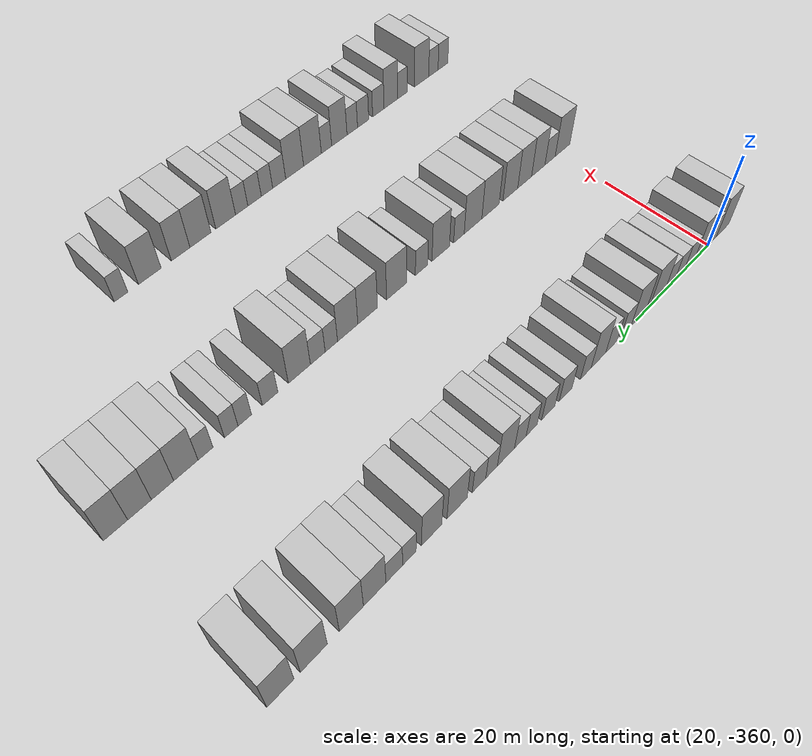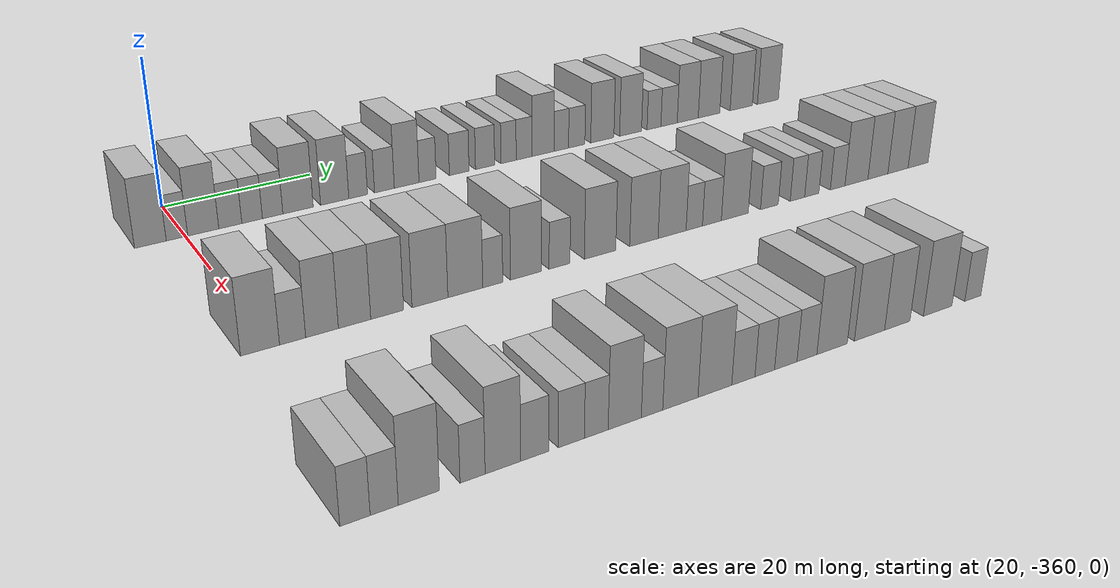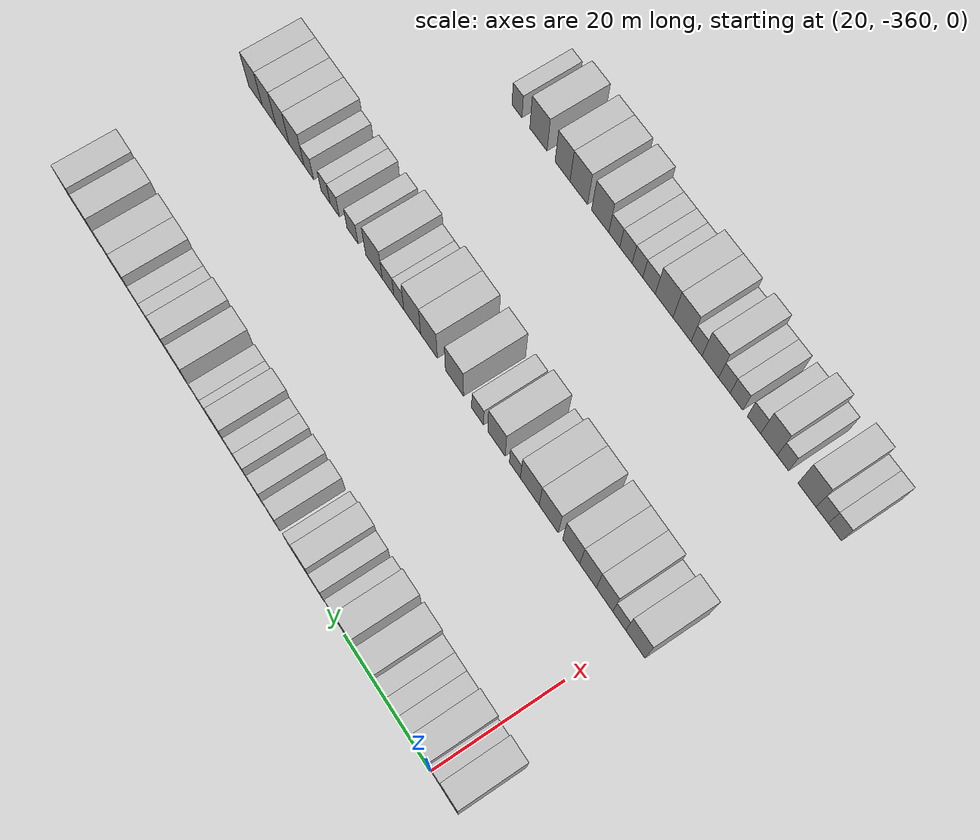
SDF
<sdf version="1.6">
 <world name="default">
  <model name="building_25">
   <static>1</static>
   <pose>25.0000 -364.2365 0 0.000000 0.000000 0.000000</pose>
   <link name="link">
    <pose>0 0 4.50 0 0 0</pose>
    <collision name="collision"><geometry><box><size>10.0000 3.8043 9.0000</size></box></geometry></collision>
    <visual name="visual">
     <cast_shadows>0</cast_shadows>
     <geometry><box><size>10.0000 3.8043 9.0000</size></box></geometry>
     <material>
      <script>
       <uri>model://HANNAS_wall/materials/scripts</uri>
       <uri>model://HANNAS_wall/materials/textures</uri>
       <name>vrc/HANNAS_wall</name>
      </script>
     </material>
    </visual>
   </link>
  </model>
  <model name="building_26">
   <static>1</static>
   <pose>25.0000 -361.0230 0 0.000000 0.000000 0.000000</pose>
   <link name="link">
    <pose>0 0 3.00 0 0 0</pose>
    <collision name="collision"><geometry><box><size>10.0000 2.6225 6.0000</size></box></geometry></collision>
    <visual name="visual">
     <cast_shadows>0</cast_shadows>
     <geometry><box><size>10.0000 2.6225 6.0000</size></box></geometry>
     <material>
      <script>
       <uri>model://HANNAS_wall/materials/scripts</uri>
       <uri>model://HANNAS_wall/materials/textures</uri>
       <name>vrc/HANNAS_wall</name>
      </script>
     </material>
    </visual>
   </link>
  </model>
  <model name="building_27">
   <static>1</static>
   <pose>25.0000 -357.7749 0 0.000000 0.000000 0.000000</pose>
   <link name="link">
    <pose>0 0 4.50 0 0 0</pose>
    <collision name="collision"><geometry><box><size>10.0000 3.8737 9.0000</size></box></geometry></collision>
    <visual name="visual">
     <cast_shadows>0</cast_shadows>
     <geometry><box><size>10.0000 3.8737 9.0000</size></box></geometry>
     <material>
      <script>
       <uri>model://HANNAS_wall/materials/scripts</uri>
       <uri>model://HANNAS_wall/materials/textures</uri>
       <name>vrc/HANNAS_wall</name>
      </script>
     </material>
    </visual>
   </link>
  </model>
  <model name="building_28">
   <static>1</static>
   <pose>25.0000 -354.3741 0 0.000000 0.000000 0.000000</pose>
   <link name="link">
    <pose>0 0 3.00 0 0 0</pose>
    <collision name="collision"><geometry><box><size>10.0000 2.9279 6.0000</size></box></geometry></collision>
    <visual name="visual">
     <cast_shadows>0</cast_shadows>
     <geometry><box><size>10.0000 2.9279 6.0000</size></box></geometry>
     <material>
      <script>
       <uri>model://HANNAS_wall/materials/scripts</uri>
       <uri>model://HANNAS_wall/materials/textures</uri>
       <name>vrc/HANNAS_wall</name>
      </script>
     </material>
    </visual>
   </link>
  </model>
  <model name="building_29">
   <static>1</static>
   <pose>25.0000 -351.5762 0 0.000000 0.000000 0.000000</pose>
   <link name="link">
    <pose>0 0 3.00 0 0 0</pose>
    <collision name="collision"><geometry><box><size>10.0000 2.6679 6.0000</size></box></geometry></collision>
    <visual name="visual">
     <cast_shadows>0</cast_shadows>
     <geometry><box><size>10.0000 2.6679 6.0000</size></box></geometry>
     <material>
      <script>
       <uri>model://HANNAS_wall/materials/scripts</uri>
       <uri>model://HANNAS_wall/materials/textures</uri>
       <name>vrc/HANNAS_wall</name>
      </script>
     </material>
    </visual>
   </link>
  </model>
  <model name="building_30">
   <static>1</static>
   <pose>25.0000 -348.9014 0 0.000000 0.000000 0.000000</pose>
   <link name="link">
    <pose>0 0 3.00 0 0 0</pose>
    <collision name="collision"><geometry><box><size>10.0000 2.6817 6.0000</size></box></geometry></collision>
    <visual name="visual">
     <cast_shadows>0</cast_shadows>
     <geometry><box><size>10.0000 2.6817 6.0000</size></box></geometry>
     <material>
      <script>
       <uri>model://HANNAS_wall/materials/scripts</uri>
       <uri>model://HANNAS_wall/materials/textures</uri>
       <name>vrc/HANNAS_wall</name>
      </script>
     </material>
    </visual>
   </link>
  </model>
  <model name="building_31">
   <static>1</static>
   <pose>25.0000 -345.5263 0 0.000000 0.000000 0.000000</pose>
   <link name="link">
    <pose>0 0 4.50 0 0 0</pose>
    <collision name="collision"><geometry><box><size>10.0000 4.0684 9.0000</size></box></geometry></collision>
    <visual name="visual">
     <cast_shadows>0</cast_shadows>
     <geometry><box><size>10.0000 4.0684 9.0000</size></box></geometry>
     <material>
      <script>
       <uri>model://HANNAS_wall/materials/scripts</uri>
       <uri>model://HANNAS_wall/materials/textures</uri>
       <name>vrc/HANNAS_wall</name>
      </script>
     </material>
    </visual>
   </link>
  </model>
  <model name="building_32">
   <static>1</static>
   <pose>25.0000 -340.5434 0 0.000000 0.000000 0.000000</pose>
   <link name="link">
    <pose>0 0 4.50 0 0 0</pose>
    <collision name="collision"><geometry><box><size>10.0000 3.8974 9.0000</size></box></geometry></collision>
    <visual name="visual">
     <cast_shadows>0</cast_shadows>
     <geometry><box><size>10.0000 3.8974 9.0000</size></box></geometry>
     <material>
      <script>
       <uri>model://HANNAS_wall/materials/scripts</uri>
       <uri>model://HANNAS_wall/materials/textures</uri>
       <name>vrc/HANNAS_wall</name>
      </script>
     </material>
    </visual>
   </link>
  </model>
  <model name="building_33">
   <static>1</static>
   <pose>25.0000 -337.2817 0 0.000000 0.000000 0.000000</pose>
   <link name="link">
    <pose>0 0 3.00 0 0 0</pose>
    <collision name="collision"><geometry><box><size>10.0000 2.6259 6.0000</size></box></geometry></collision>
    <visual name="visual">
     <cast_shadows>0</cast_shadows>
     <geometry><box><size>10.0000 2.6259 6.0000</size></box></geometry>
     <material>
      <script>
       <uri>model://HANNAS_wall/materials/scripts</uri>
       <uri>model://HANNAS_wall/materials/textures</uri>
       <name>vrc/HANNAS_wall</name>
      </script>
     </material>
    </visual>
   </link>
  </model>
  <model name="building_34">
   <static>1</static>
   <pose>25.0000 -333.5525 0 0.000000 0.000000 0.000000</pose>
   <link name="link">
    <pose>0 0 3.00 0 0 0</pose>
    <collision name="collision"><geometry><box><size>10.0000 2.8326 6.0000</size></box></geometry></collision>
    <visual name="visual">
     <cast_shadows>0</cast_shadows>
     <geometry><box><size>10.0000 2.8326 6.0000</size></box></geometry>
     <material>
      <script>
       <uri>model://HANNAS_wall/materials/scripts</uri>
       <uri>model://HANNAS_wall/materials/textures</uri>
       <name>vrc/HANNAS_wall</name>
      </script>
     </material>
    </visual>
   </link>
  </model>
  <model name="building_35">
   <static>1</static>
   <pose>25.0000 -330.3303 0 0.000000 0.000000 0.000000</pose>
   <link name="link">
    <pose>0 0 4.50 0 0 0</pose>
    <collision name="collision"><geometry><box><size>10.0000 3.6116 9.0000</size></box></geometry></collision>
    <visual name="visual">
     <cast_shadows>0</cast_shadows>
     <geometry><box><size>10.0000 3.6116 9.0000</size></box></geometry>
     <material>
      <script>
       <uri>model://HANNAS_wall/materials/scripts</uri>
       <uri>model://HANNAS_wall/materials/textures</uri>
       <name>vrc/HANNAS_wall</name>
      </script>
     </material>
    </visual>
   </link>
  </model>
  <model name="building_36">
   <static>1</static>
   <pose>25.0000 -327.2523 0 0.000000 0.000000 0.000000</pose>
   <link name="link">
    <pose>0 0 3.00 0 0 0</pose>
    <collision name="collision"><geometry><box><size>10.0000 2.5445 6.0000</size></box></geometry></collision>
    <visual name="visual">
     <cast_shadows>0</cast_shadows>
     <geometry><box><size>10.0000 2.5445 6.0000</size></box></geometry>
     <material>
      <script>
       <uri>model://HANNAS_wall/materials/scripts</uri>
       <uri>model://HANNAS_wall/materials/textures</uri>
       <name>vrc/HANNAS_wall</name>
      </script>
     </material>
    </visual>
   </link>
  </model>
  <model name="building_37">
   <static>1</static>
   <pose>25.0000 -322.4861 0 0.000000 0.000000 0.000000</pose>
   <link name="link">
    <pose>0 0 3.00 0 0 0</pose>
    <collision name="collision"><geometry><box><size>10.0000 2.9878 6.0000</size></box></geometry></collision>
    <visual name="visual">
     <cast_shadows>0</cast_shadows>
     <geometry><box><size>10.0000 2.9878 6.0000</size></box></geometry>
     <material>
      <script>
       <uri>model://HANNAS_wall/materials/scripts</uri>
       <uri>model://HANNAS_wall/materials/textures</uri>
       <name>vrc/HANNAS_wall</name>
      </script>
     </material>
    </visual>
   </link>
  </model>
  <model name="building_38">
   <static>1</static>
   <pose>25.0000 -318.5004 0 0.000000 0.000000 0.000000</pose>
   <link name="link">
    <pose>0 0 3.00 0 0 0</pose>
    <collision name="collision"><geometry><box><size>10.0000 2.9836 6.0000</size></box></geometry></collision>
    <visual name="visual">
     <cast_shadows>0</cast_shadows>
     <geometry><box><size>10.0000 2.9836 6.0000</size></box></geometry>
     <material>
      <script>
       <uri>model://HANNAS_wall/materials/scripts</uri>
       <uri>model://HANNAS_wall/materials/textures</uri>
       <name>vrc/HANNAS_wall</name>
      </script>
     </material>
    </visual>
   </link>
  </model>
  <model name="building_39">
   <static>1</static>
   <pose>25.0000 -314.8002 0 0.000000 0.000000 0.000000</pose>
   <link name="link">
    <pose>0 0 3.00 0 0 0</pose>
    <collision name="collision"><geometry><box><size>10.0000 2.4167 6.0000</size></box></geometry></collision>
    <visual name="visual">
     <cast_shadows>0</cast_shadows>
     <geometry><box><size>10.0000 2.4167 6.0000</size></box></geometry>
     <material>
      <script>
       <uri>model://HANNAS_wall/materials/scripts</uri>
       <uri>model://HANNAS_wall/materials/textures</uri>
       <name>vrc/HANNAS_wall</name>
      </script>
     </material>
    </visual>
   </link>
  </model>
  <model name="building_40">
   <static>1</static>
   <pose>25.0000 -312.3255 0 0.000000 0.000000 0.000000</pose>
   <link name="link">
    <pose>0 0 3.00 0 0 0</pose>
    <collision name="collision"><geometry><box><size>10.0000 2.5326 6.0000</size></box></geometry></collision>
    <visual name="visual">
     <cast_shadows>0</cast_shadows>
     <geometry><box><size>10.0000 2.5326 6.0000</size></box></geometry>
     <material>
      <script>
       <uri>model://HANNAS_wall/materials/scripts</uri>
       <uri>model://HANNAS_wall/materials/textures</uri>
       <name>vrc/HANNAS_wall</name>
      </script>
     </material>
    </visual>
   </link>
  </model>
  <model name="building_41">
   <static>1</static>
   <pose>25.0000 -309.2463 0 0.000000 0.000000 0.000000</pose>
   <link name="link">
    <pose>0 0 4.50 0 0 0</pose>
    <collision name="collision"><geometry><box><size>10.0000 3.6259 9.0000</size></box></geometry></collision>
    <visual name="visual">
     <cast_shadows>0</cast_shadows>
     <geometry><box><size>10.0000 3.6259 9.0000</size></box></geometry>
     <material>
      <script>
       <uri>model://HANNAS_wall/materials/scripts</uri>
       <uri>model://HANNAS_wall/materials/textures</uri>
       <name>vrc/HANNAS_wall</name>
      </script>
     </material>
    </visual>
   </link>
  </model>
  <model name="building_42">
   <static>1</static>
   <pose>25.0000 -306.2220 0 0.000000 0.000000 0.000000</pose>
   <link name="link">
    <pose>0 0 3.00 0 0 0</pose>
    <collision name="collision"><geometry><box><size>10.0000 2.4227 6.0000</size></box></geometry></collision>
    <visual name="visual">
     <cast_shadows>0</cast_shadows>
     <geometry><box><size>10.0000 2.4227 6.0000</size></box></geometry>
     <material>
      <script>
       <uri>model://HANNAS_wall/materials/scripts</uri>
       <uri>model://HANNAS_wall/materials/textures</uri>
       <name>vrc/HANNAS_wall</name>
      </script>
     </material>
    </visual>
   </link>
  </model>
  <model name="building_43">
   <static>1</static>
   <pose>25.0000 -303.6362 0 0.000000 0.000000 0.000000</pose>
   <link name="link">
    <pose>0 0 3.00 0 0 0</pose>
    <collision name="collision"><geometry><box><size>10.0000 2.7490 6.0000</size></box></geometry></collision>
    <visual name="visual">
     <cast_shadows>0</cast_shadows>
     <geometry><box><size>10.0000 2.7490 6.0000</size></box></geometry>
     <material>
      <script>
       <uri>model://HANNAS_wall/materials/scripts</uri>
       <uri>model://HANNAS_wall/materials/textures</uri>
       <name>vrc/HANNAS_wall</name>
      </script>
     </material>
    </visual>
   </link>
  </model>
  <model name="building_44">
   <static>1</static>
   <pose>25.0000 -299.2667 0 0.000000 0.000000 0.000000</pose>
   <link name="link">
    <pose>0 0 4.50 0 0 0</pose>
    <collision name="collision"><geometry><box><size>10.0000 3.9901 9.0000</size></box></geometry></collision>
    <visual name="visual">
     <cast_shadows>0</cast_shadows>
     <geometry><box><size>10.0000 3.9901 9.0000</size></box></geometry>
     <material>
      <script>
       <uri>model://HANNAS_wall/materials/scripts</uri>
       <uri>model://HANNAS_wall/materials/textures</uri>
       <name>vrc/HANNAS_wall</name>
      </script>
     </material>
    </visual>
   </link>
  </model>
  <model name="building_45">
   <static>1</static>
   <pose>25.0000 -294.3375 0 0.000000 0.000000 0.000000</pose>
   <link name="link">
    <pose>0 0 4.50 0 0 0</pose>
    <collision name="collision"><geometry><box><size>10.0000 3.8683 9.0000</size></box></geometry></collision>
    <visual name="visual">
     <cast_shadows>0</cast_shadows>
     <geometry><box><size>10.0000 3.8683 9.0000</size></box></geometry>
     <material>
      <script>
       <uri>model://HANNAS_wall/materials/scripts</uri>
       <uri>model://HANNAS_wall/materials/textures</uri>
       <name>vrc/HANNAS_wall</name>
      </script>
     </material>
    </visual>
   </link>
  </model>
  <model name="building_46">
   <static>1</static>
   <pose>25.0000 -290.1583 0 0.000000 0.000000 0.000000</pose>
   <link name="link">
    <pose>0 0 3.00 0 0 0</pose>
    <collision name="collision"><geometry><box><size>10.0000 2.4899 6.0000</size></box></geometry></collision>
    <visual name="visual">
     <cast_shadows>0</cast_shadows>
     <geometry><box><size>10.0000 2.4899 6.0000</size></box></geometry>
     <material>
      <script>
       <uri>model://HANNAS_wall/materials/scripts</uri>
       <uri>model://HANNAS_wall/materials/textures</uri>
       <name>vrc/HANNAS_wall</name>
      </script>
     </material>
    </visual>
   </link>
  </model>
  <model name="building_47">
   <static>1</static>
   <pose>25.0000 -287.4162 0 0.000000 0.000000 0.000000</pose>
   <link name="link">
    <pose>0 0 3.00 0 0 0</pose>
    <collision name="collision"><geometry><box><size>10.0000 2.9943 6.0000</size></box></geometry></collision>
    <visual name="visual">
     <cast_shadows>0</cast_shadows>
     <geometry><box><size>10.0000 2.9943 6.0000</size></box></geometry>
     <material>
      <script>
       <uri>model://HANNAS_wall/materials/scripts</uri>
       <uri>model://HANNAS_wall/materials/textures</uri>
       <name>vrc/HANNAS_wall</name>
      </script>
     </material>
    </visual>
   </link>
  </model>
  <model name="building_48">
   <static>1</static>
   <pose>25.0000 -283.9546 0 0.000000 0.000000 0.000000</pose>
   <link name="link">
    <pose>0 0 4.50 0 0 0</pose>
    <collision name="collision"><geometry><box><size>10.0000 3.9290 9.0000</size></box></geometry></collision>
    <visual name="visual">
     <cast_shadows>0</cast_shadows>
     <geometry><box><size>10.0000 3.9290 9.0000</size></box></geometry>
     <material>
      <script>
       <uri>model://HANNAS_wall/materials/scripts</uri>
       <uri>model://HANNAS_wall/materials/textures</uri>
       <name>vrc/HANNAS_wall</name>
      </script>
     </material>
    </visual>
   </link>
  </model>
  <model name="building_49">
   <static>1</static>
   <pose>25.0000 -279.9491 0 0.000000 0.000000 0.000000</pose>
   <link name="link">
    <pose>0 0 4.50 0 0 0</pose>
    <collision name="collision"><geometry><box><size>10.0000 4.0820 9.0000</size></box></geometry></collision>
    <visual name="visual">
     <cast_shadows>0</cast_shadows>
     <geometry><box><size>10.0000 4.0820 9.0000</size></box></geometry>
     <material>
      <script>
       <uri>model://HANNAS_wall/materials/scripts</uri>
       <uri>model://HANNAS_wall/materials/textures</uri>
       <name>vrc/HANNAS_wall</name>
      </script>
     </material>
    </visual>
   </link>
  </model>
  <model name="building_50">
   <static>1</static>
   <pose>25.0000 -273.7268 0 0.000000 0.000000 0.000000</pose>
   <link name="link">
    <pose>0 0 4.50 0 0 0</pose>
    <collision name="collision"><geometry><box><size>10.0000 4.3626 9.0000</size></box></geometry></collision>
    <visual name="visual">
     <cast_shadows>0</cast_shadows>
     <geometry><box><size>10.0000 4.3626 9.0000</size></box></geometry>
     <material>
      <script>
       <uri>model://HANNAS_wall/materials/scripts</uri>
       <uri>model://HANNAS_wall/materials/textures</uri>
       <name>vrc/HANNAS_wall</name>
      </script>
     </material>
    </visual>
   </link>
  </model>
  <model name="building_51">
   <static>1</static>
   <pose>25.0000 -268.4411 0 0.000000 0.000000 0.000000</pose>
   <link name="link">
    <pose>0 0 4.50 0 0 0</pose>
    <collision name="collision"><geometry><box><size>10.0000 4.2088 9.0000</size></box></geometry></collision>
    <visual name="visual">
     <cast_shadows>0</cast_shadows>
     <geometry><box><size>10.0000 4.2088 9.0000</size></box></geometry>
     <material>
      <script>
       <uri>model://HANNAS_wall/materials/scripts</uri>
       <uri>model://HANNAS_wall/materials/textures</uri>
       <name>vrc/HANNAS_wall</name>
      </script>
     </material>
    </visual>
   </link>
  </model>
  <model name="building_251">
   <static>1</static>
   <pose>55.0000 -361.2225 0 0.000000 0.000000 0.000000</pose>
   <link name="link">
    <pose>0 0 4.50 0 0 0</pose>
    <collision name="collision"><geometry><box><size>10.0000 4.1702 9.0000</size></box></geometry></collision>
    <visual name="visual">
     <cast_shadows>0</cast_shadows>
     <geometry><box><size>10.0000 4.1702 9.0000</size></box></geometry>
     <material>
      <script>
       <uri>model://HANNAS_wall/materials/scripts</uri>
       <uri>model://HANNAS_wall/materials/textures</uri>
       <name>vrc/HANNAS_wall</name>
      </script>
     </material>
    </visual>
   </link>
  </model>
  <model name="building_252">
   <static>1</static>
   <pose>55.0000 -357.7024 0 0.000000 0.000000 0.000000</pose>
   <link name="link">
    <pose>0 0 3.00 0 0 0</pose>
    <collision name="collision"><geometry><box><size>10.0000 2.8701 6.0000</size></box></geometry></collision>
    <visual name="visual">
     <cast_shadows>0</cast_shadows>
     <geometry><box><size>10.0000 2.8701 6.0000</size></box></geometry>
     <material>
      <script>
       <uri>model://HANNAS_wall/materials/scripts</uri>
       <uri>model://HANNAS_wall/materials/textures</uri>
       <name>vrc/HANNAS_wall</name>
      </script>
     </material>
    </visual>
   </link>
  </model>
  <model name="building_253">
   <static>1</static>
   <pose>55.0000 -354.4376 0 0.000000 0.000000 0.000000</pose>
   <link name="link">
    <pose>0 0 4.50 0 0 0</pose>
    <collision name="collision"><geometry><box><size>10.0000 3.6593 9.0000</size></box></geometry></collision>
    <visual name="visual">
     <cast_shadows>0</cast_shadows>
     <geometry><box><size>10.0000 3.6593 9.0000</size></box></geometry>
     <material>
      <script>
       <uri>model://HANNAS_wall/materials/scripts</uri>
       <uri>model://HANNAS_wall/materials/textures</uri>
       <name>vrc/HANNAS_wall</name>
      </script>
     </material>
    </visual>
   </link>
  </model>
  <model name="building_254">
   <static>1</static>
   <pose>55.0000 -350.7460 0 0.000000 0.000000 0.000000</pose>
   <link name="link">
    <pose>0 0 4.50 0 0 0</pose>
    <collision name="collision"><geometry><box><size>10.0000 3.7240 9.0000</size></box></geometry></collision>
    <visual name="visual">
     <cast_shadows>0</cast_shadows>
     <geometry><box><size>10.0000 3.7240 9.0000</size></box></geometry>
     <material>
      <script>
       <uri>model://HANNAS_wall/materials/scripts</uri>
       <uri>model://HANNAS_wall/materials/textures</uri>
       <name>vrc/HANNAS_wall</name>
      </script>
     </material>
    </visual>
   </link>
  </model>
  <model name="building_255">
   <static>1</static>
   <pose>55.0000 -346.9394 0 0.000000 0.000000 0.000000</pose>
   <link name="link">
    <pose>0 0 4.50 0 0 0</pose>
    <collision name="collision"><geometry><box><size>10.0000 3.8892 9.0000</size></box></geometry></collision>
    <visual name="visual">
     <cast_shadows>0</cast_shadows>
     <geometry><box><size>10.0000 3.8892 9.0000</size></box></geometry>
     <material>
      <script>
       <uri>model://HANNAS_wall/materials/scripts</uri>
       <uri>model://HANNAS_wall/materials/textures</uri>
       <name>vrc/HANNAS_wall</name>
      </script>
     </material>
    </visual>
   </link>
  </model>
  <model name="building_256">
   <static>1</static>
   <pose>55.0000 -341.8030 0 0.000000 0.000000 0.000000</pose>
   <link name="link">
    <pose>0 0 4.50 0 0 0</pose>
    <collision name="collision"><geometry><box><size>10.0000 4.3836 9.0000</size></box></geometry></collision>
    <visual name="visual">
     <cast_shadows>0</cast_shadows>
     <geometry><box><size>10.0000 4.3836 9.0000</size></box></geometry>
     <material>
      <script>
       <uri>model://HANNAS_wall/materials/scripts</uri>
       <uri>model://HANNAS_wall/materials/textures</uri>
       <name>vrc/HANNAS_wall</name>
      </script>
     </material>
    </visual>
   </link>
  </model>
  <model name="building_257">
   <static>1</static>
   <pose>55.0000 -337.4171 0 0.000000 0.000000 0.000000</pose>
   <link name="link">
    <pose>0 0 4.50 0 0 0</pose>
    <collision name="collision"><geometry><box><size>10.0000 4.3882 9.0000</size></box></geometry></collision>
    <visual name="visual">
     <cast_shadows>0</cast_shadows>
     <geometry><box><size>10.0000 4.3882 9.0000</size></box></geometry>
     <material>
      <script>
       <uri>model://HANNAS_wall/materials/scripts</uri>
       <uri>model://HANNAS_wall/materials/textures</uri>
       <name>vrc/HANNAS_wall</name>
      </script>
     </material>
    </visual>
   </link>
  </model>
  <model name="building_258">
   <static>1</static>
   <pose>55.0000 -333.9358 0 0.000000 0.000000 0.000000</pose>
   <link name="link">
    <pose>0 0 3.00 0 0 0</pose>
    <collision name="collision"><geometry><box><size>10.0000 2.5744 6.0000</size></box></geometry></collision>
    <visual name="visual">
     <cast_shadows>0</cast_shadows>
     <geometry><box><size>10.0000 2.5744 6.0000</size></box></geometry>
     <material>
      <script>
       <uri>model://HANNAS_wall/materials/scripts</uri>
       <uri>model://HANNAS_wall/materials/textures</uri>
       <name>vrc/HANNAS_wall</name>
      </script>
     </material>
    </visual>
   </link>
  </model>
  <model name="building_259">
   <static>1</static>
   <pose>55.0000 -329.5795 0 0.000000 0.000000 0.000000</pose>
   <link name="link">
    <pose>0 0 4.50 0 0 0</pose>
    <collision name="collision"><geometry><box><size>10.0000 4.1382 9.0000</size></box></geometry></collision>
    <visual name="visual">
     <cast_shadows>0</cast_shadows>
     <geometry><box><size>10.0000 4.1382 9.0000</size></box></geometry>
     <material>
      <script>
       <uri>model://HANNAS_wall/materials/scripts</uri>
       <uri>model://HANNAS_wall/materials/textures</uri>
       <name>vrc/HANNAS_wall</name>
      </script>
     </material>
    </visual>
   </link>
  </model>
  <model name="building_260">
   <static>1</static>
   <pose>55.0000 -325.0869 0 0.000000 0.000000 0.000000</pose>
   <link name="link">
    <pose>0 0 3.00 0 0 0</pose>
    <collision name="collision"><geometry><box><size>10.0000 2.8469 6.0000</size></box></geometry></collision>
    <visual name="visual">
     <cast_shadows>0</cast_shadows>
     <geometry><box><size>10.0000 2.8469 6.0000</size></box></geometry>
     <material>
      <script>
       <uri>model://HANNAS_wall/materials/scripts</uri>
       <uri>model://HANNAS_wall/materials/textures</uri>
       <name>vrc/HANNAS_wall</name>
      </script>
     </material>
    </visual>
   </link>
  </model>
  <model name="building_261">
   <static>1</static>
   <pose>55.0000 -319.4490 0 0.000000 0.000000 0.000000</pose>
   <link name="link">
    <pose>0 0 4.50 0 0 0</pose>
    <collision name="collision"><geometry><box><size>10.0000 4.4290 9.0000</size></box></geometry></collision>
    <visual name="visual">
     <cast_shadows>0</cast_shadows>
     <geometry><box><size>10.0000 4.4290 9.0000</size></box></geometry>
     <material>
      <script>
       <uri>model://HANNAS_wall/materials/scripts</uri>
       <uri>model://HANNAS_wall/materials/textures</uri>
       <name>vrc/HANNAS_wall</name>
      </script>
     </material>
    </visual>
   </link>
  </model>
  <model name="building_262">
   <static>1</static>
   <pose>55.0000 -313.1427 0 0.000000 0.000000 0.000000</pose>
   <link name="link">
    <pose>0 0 4.50 0 0 0</pose>
    <collision name="collision"><geometry><box><size>10.0000 4.1835 9.0000</size></box></geometry></collision>
    <visual name="visual">
     <cast_shadows>0</cast_shadows>
     <geometry><box><size>10.0000 4.1835 9.0000</size></box></geometry>
     <material>
      <script>
       <uri>model://HANNAS_wall/materials/scripts</uri>
       <uri>model://HANNAS_wall/materials/textures</uri>
       <name>vrc/HANNAS_wall</name>
      </script>
     </material>
    </visual>
   </link>
  </model>
  <model name="building_263">
   <static>1</static>
   <pose>55.0000 -308.9392 0 0.000000 0.000000 0.000000</pose>
   <link name="link">
    <pose>0 0 4.50 0 0 0</pose>
    <collision name="collision"><geometry><box><size>10.0000 4.2237 9.0000</size></box></geometry></collision>
    <visual name="visual">
     <cast_shadows>0</cast_shadows>
     <geometry><box><size>10.0000 4.2237 9.0000</size></box></geometry>
     <material>
      <script>
       <uri>model://HANNAS_wall/materials/scripts</uri>
       <uri>model://HANNAS_wall/materials/textures</uri>
       <name>vrc/HANNAS_wall</name>
      </script>
     </material>
    </visual>
   </link>
  </model>
  <model name="building_264">
   <static>1</static>
   <pose>55.0000 -305.5668 0 0.000000 0.000000 0.000000</pose>
   <link name="link">
    <pose>0 0 3.00 0 0 0</pose>
    <collision name="collision"><geometry><box><size>10.0000 2.5210 6.0000</size></box></geometry></collision>
    <visual name="visual">
     <cast_shadows>0</cast_shadows>
     <geometry><box><size>10.0000 2.5210 6.0000</size></box></geometry>
     <material>
      <script>
       <uri>model://HANNAS_wall/materials/scripts</uri>
       <uri>model://HANNAS_wall/materials/textures</uri>
       <name>vrc/HANNAS_wall</name>
      </script>
     </material>
    </visual>
   </link>
  </model>
  <model name="building_265">
   <static>1</static>
   <pose>55.0000 -302.8274 0 0.000000 0.000000 0.000000</pose>
   <link name="link">
    <pose>0 0 3.00 0 0 0</pose>
    <collision name="collision"><geometry><box><size>10.0000 2.9578 6.0000</size></box></geometry></collision>
    <visual name="visual">
     <cast_shadows>0</cast_shadows>
     <geometry><box><size>10.0000 2.9578 6.0000</size></box></geometry>
     <material>
      <script>
       <uri>model://HANNAS_wall/materials/scripts</uri>
       <uri>model://HANNAS_wall/materials/textures</uri>
       <name>vrc/HANNAS_wall</name>
      </script>
     </material>
    </visual>
   </link>
  </model>
  <model name="building_266">
   <static>1</static>
   <pose>55.0000 -299.2006 0 0.000000 0.000000 0.000000</pose>
   <link name="link">
    <pose>0 0 4.50 0 0 0</pose>
    <collision name="collision"><geometry><box><size>10.0000 4.2959 9.0000</size></box></geometry></collision>
    <visual name="visual">
     <cast_shadows>0</cast_shadows>
     <geometry><box><size>10.0000 4.2959 9.0000</size></box></geometry>
     <material>
      <script>
       <uri>model://HANNAS_wall/materials/scripts</uri>
       <uri>model://HANNAS_wall/materials/textures</uri>
       <name>vrc/HANNAS_wall</name>
      </script>
     </material>
    </visual>
   </link>
  </model>
  <model name="building_267">
   <static>1</static>
   <pose>55.0000 -293.5896 0 0.000000 0.000000 0.000000</pose>
   <link name="link">
    <pose>0 0 3.00 0 0 0</pose>
    <collision name="collision"><geometry><box><size>10.0000 2.9260 6.0000</size></box></geometry></collision>
    <visual name="visual">
     <cast_shadows>0</cast_shadows>
     <geometry><box><size>10.0000 2.9260 6.0000</size></box></geometry>
     <material>
      <script>
       <uri>model://HANNAS_wall/materials/scripts</uri>
       <uri>model://HANNAS_wall/materials/textures</uri>
       <name>vrc/HANNAS_wall</name>
      </script>
     </material>
    </visual>
   </link>
  </model>
  <model name="building_268">
   <static>1</static>
   <pose>55.0000 -288.9006 0 0.000000 0.000000 0.000000</pose>
   <link name="link">
    <pose>0 0 3.00 0 0 0</pose>
    <collision name="collision"><geometry><box><size>10.0000 2.4520 6.0000</size></box></geometry></collision>
    <visual name="visual">
     <cast_shadows>0</cast_shadows>
     <geometry><box><size>10.0000 2.4520 6.0000</size></box></geometry>
     <material>
      <script>
       <uri>model://HANNAS_wall/materials/scripts</uri>
       <uri>model://HANNAS_wall/materials/textures</uri>
       <name>vrc/HANNAS_wall</name>
      </script>
     </material>
    </visual>
   </link>
  </model>
  <model name="building_269">
   <static>1</static>
   <pose>55.0000 -286.4538 0 0.000000 0.000000 0.000000</pose>
   <link name="link">
    <pose>0 0 3.00 0 0 0</pose>
    <collision name="collision"><geometry><box><size>10.0000 2.4414 6.0000</size></box></geometry></collision>
    <visual name="visual">
     <cast_shadows>0</cast_shadows>
     <geometry><box><size>10.0000 2.4414 6.0000</size></box></geometry>
     <material>
      <script>
       <uri>model://HANNAS_wall/materials/scripts</uri>
       <uri>model://HANNAS_wall/materials/textures</uri>
       <name>vrc/HANNAS_wall</name>
      </script>
     </material>
    </visual>
   </link>
  </model>
  <model name="building_270">
   <static>1</static>
   <pose>55.0000 -281.9396 0 0.000000 0.000000 0.000000</pose>
   <link name="link">
    <pose>0 0 3.00 0 0 0</pose>
    <collision name="collision"><geometry><box><size>10.0000 2.5870 6.0000</size></box></geometry></collision>
    <visual name="visual">
     <cast_shadows>0</cast_shadows>
     <geometry><box><size>10.0000 2.5870 6.0000</size></box></geometry>
     <material>
      <script>
       <uri>model://HANNAS_wall/materials/scripts</uri>
       <uri>model://HANNAS_wall/materials/textures</uri>
       <name>vrc/HANNAS_wall</name>
      </script>
     </material>
    </visual>
   </link>
  </model>
  <model name="building_271">
   <static>1</static>
   <pose>55.0000 -278.5847 0 0.000000 0.000000 0.000000</pose>
   <link name="link">
    <pose>0 0 4.50 0 0 0</pose>
    <collision name="collision"><geometry><box><size>10.0000 4.1227 9.0000</size></box></geometry></collision>
    <visual name="visual">
     <cast_shadows>0</cast_shadows>
     <geometry><box><size>10.0000 4.1227 9.0000</size></box></geometry>
     <material>
      <script>
       <uri>model://HANNAS_wall/materials/scripts</uri>
       <uri>model://HANNAS_wall/materials/textures</uri>
       <name>vrc/HANNAS_wall</name>
      </script>
     </material>
    </visual>
   </link>
  </model>
  <model name="building_272">
   <static>1</static>
   <pose>55.0000 -274.6930 0 0.000000 0.000000 0.000000</pose>
   <link name="link">
    <pose>0 0 4.50 0 0 0</pose>
    <collision name="collision"><geometry><box><size>10.0000 3.6607 9.0000</size></box></geometry></collision>
    <visual name="visual">
     <cast_shadows>0</cast_shadows>
     <geometry><box><size>10.0000 3.6607 9.0000</size></box></geometry>
     <material>
      <script>
       <uri>model://HANNAS_wall/materials/scripts</uri>
       <uri>model://HANNAS_wall/materials/textures</uri>
       <name>vrc/HANNAS_wall</name>
      </script>
     </material>
    </visual>
   </link>
  </model>
  <model name="building_273">
   <static>1</static>
   <pose>55.0000 -270.9660 0 0.000000 0.000000 0.000000</pose>
   <link name="link">
    <pose>0 0 4.50 0 0 0</pose>
    <collision name="collision"><geometry><box><size>10.0000 3.7934 9.0000</size></box></geometry></collision>
    <visual name="visual">
     <cast_shadows>0</cast_shadows>
     <geometry><box><size>10.0000 3.7934 9.0000</size></box></geometry>
     <material>
      <script>
       <uri>model://HANNAS_wall/materials/scripts</uri>
       <uri>model://HANNAS_wall/materials/textures</uri>
       <name>vrc/HANNAS_wall</name>
      </script>
     </material>
    </visual>
   </link>
  </model>
  <model name="building_274">
   <static>1</static>
   <pose>55.0000 -267.1604 0 0.000000 0.000000 0.000000</pose>
   <link name="link">
    <pose>0 0 4.50 0 0 0</pose>
    <collision name="collision"><geometry><box><size>10.0000 3.8178 9.0000</size></box></geometry></collision>
    <visual name="visual">
     <cast_shadows>0</cast_shadows>
     <geometry><box><size>10.0000 3.8178 9.0000</size></box></geometry>
     <material>
      <script>
       <uri>model://HANNAS_wall/materials/scripts</uri>
       <uri>model://HANNAS_wall/materials/textures</uri>
       <name>vrc/HANNAS_wall</name>
      </script>
     </material>
    </visual>
   </link>
  </model>
  <model name="building_474">
   <static>1</static>
   <pose>85.0000 -363.6792 0 0.000000 0.000000 0.000000</pose>
   <link name="link">
    <pose>0 0 3.00 0 0 0</pose>
    <collision name="collision"><geometry><box><size>10.0000 2.7351 6.0000</size></box></geometry></collision>
    <visual name="visual">
     <cast_shadows>0</cast_shadows>
     <geometry><box><size>10.0000 2.7351 6.0000</size></box></geometry>
     <material>
      <script>
       <uri>model://HANNAS_wall/materials/scripts</uri>
       <uri>model://HANNAS_wall/materials/textures</uri>
       <name>vrc/HANNAS_wall</name>
      </script>
     </material>
    </visual>
   </link>
  </model>
  <model name="building_475">
   <static>1</static>
   <pose>85.0000 -361.0152 0 0.000000 0.000000 0.000000</pose>
   <link name="link">
    <pose>0 0 3.00 0 0 0</pose>
    <collision name="collision"><geometry><box><size>10.0000 2.5928 6.0000</size></box></geometry></collision>
    <visual name="visual">
     <cast_shadows>0</cast_shadows>
     <geometry><box><size>10.0000 2.5928 6.0000</size></box></geometry>
     <material>
      <script>
       <uri>model://HANNAS_wall/materials/scripts</uri>
       <uri>model://HANNAS_wall/materials/textures</uri>
       <name>vrc/HANNAS_wall</name>
      </script>
     </material>
    </visual>
   </link>
  </model>
  <model name="building_476">
   <static>1</static>
   <pose>85.0000 -357.7732 0 0.000000 0.000000 0.000000</pose>
   <link name="link">
    <pose>0 0 4.50 0 0 0</pose>
    <collision name="collision"><geometry><box><size>10.0000 3.8912 9.0000</size></box></geometry></collision>
    <visual name="visual">
     <cast_shadows>0</cast_shadows>
     <geometry><box><size>10.0000 3.8912 9.0000</size></box></geometry>
     <material>
      <script>
       <uri>model://HANNAS_wall/materials/scripts</uri>
       <uri>model://HANNAS_wall/materials/textures</uri>
       <name>vrc/HANNAS_wall</name>
      </script>
     </material>
    </visual>
   </link>
  </model>
  <model name="building_477">
   <static>1</static>
   <pose>85.0000 -352.5855 0 0.000000 0.000000 0.000000</pose>
   <link name="link">
    <pose>0 0 3.00 0 0 0</pose>
    <collision name="collision"><geometry><box><size>10.0000 2.4843 6.0000</size></box></geometry></collision>
    <visual name="visual">
     <cast_shadows>0</cast_shadows>
     <geometry><box><size>10.0000 2.4843 6.0000</size></box></geometry>
     <material>
      <script>
       <uri>model://HANNAS_wall/materials/scripts</uri>
       <uri>model://HANNAS_wall/materials/textures</uri>
       <name>vrc/HANNAS_wall</name>
      </script>
     </material>
    </visual>
   </link>
  </model>
  <model name="building_478">
   <static>1</static>
   <pose>85.0000 -349.5431 0 0.000000 0.000000 0.000000</pose>
   <link name="link">
    <pose>0 0 4.50 0 0 0</pose>
    <collision name="collision"><geometry><box><size>10.0000 3.6006 9.0000</size></box></geometry></collision>
    <visual name="visual">
     <cast_shadows>0</cast_shadows>
     <geometry><box><size>10.0000 3.6006 9.0000</size></box></geometry>
     <material>
      <script>
       <uri>model://HANNAS_wall/materials/scripts</uri>
       <uri>model://HANNAS_wall/materials/textures</uri>
       <name>vrc/HANNAS_wall</name>
      </script>
     </material>
    </visual>
   </link>
  </model>
  <model name="building_479">
   <static>1</static>
   <pose>85.0000 -346.2757 0 0.000000 0.000000 0.000000</pose>
   <link name="link">
    <pose>0 0 3.00 0 0 0</pose>
    <collision name="collision"><geometry><box><size>10.0000 2.9342 6.0000</size></box></geometry></collision>
    <visual name="visual">
     <cast_shadows>0</cast_shadows>
     <geometry><box><size>10.0000 2.9342 6.0000</size></box></geometry>
     <material>
      <script>
       <uri>model://HANNAS_wall/materials/scripts</uri>
       <uri>model://HANNAS_wall/materials/textures</uri>
       <name>vrc/HANNAS_wall</name>
      </script>
     </material>
    </visual>
   </link>
  </model>
  <model name="building_480">
   <static>1</static>
   <pose>85.0000 -342.3983 0 0.000000 0.000000 0.000000</pose>
   <link name="link">
    <pose>0 0 3.00 0 0 0</pose>
    <collision name="collision"><geometry><box><size>10.0000 2.8207 6.0000</size></box></geometry></collision>
    <visual name="visual">
     <cast_shadows>0</cast_shadows>
     <geometry><box><size>10.0000 2.8207 6.0000</size></box></geometry>
     <material>
      <script>
       <uri>model://HANNAS_wall/materials/scripts</uri>
       <uri>model://HANNAS_wall/materials/textures</uri>
       <name>vrc/HANNAS_wall</name>
      </script>
     </material>
    </visual>
   </link>
  </model>
  <model name="building_481">
   <static>1</static>
   <pose>85.0000 -339.6779 0 0.000000 0.000000 0.000000</pose>
   <link name="link">
    <pose>0 0 3.00 0 0 0</pose>
    <collision name="collision"><geometry><box><size>10.0000 2.6201 6.0000</size></box></geometry></collision>
    <visual name="visual">
     <cast_shadows>0</cast_shadows>
     <geometry><box><size>10.0000 2.6201 6.0000</size></box></geometry>
     <material>
      <script>
       <uri>model://HANNAS_wall/materials/scripts</uri>
       <uri>model://HANNAS_wall/materials/textures</uri>
       <name>vrc/HANNAS_wall</name>
      </script>
     </material>
    </visual>
   </link>
  </model>
  <model name="building_482">
   <static>1</static>
   <pose>85.0000 -336.4980 0 0.000000 0.000000 0.000000</pose>
   <link name="link">
    <pose>0 0 4.50 0 0 0</pose>
    <collision name="collision"><geometry><box><size>10.0000 3.7398 9.0000</size></box></geometry></collision>
    <visual name="visual">
     <cast_shadows>0</cast_shadows>
     <geometry><box><size>10.0000 3.7398 9.0000</size></box></geometry>
     <material>
      <script>
       <uri>model://HANNAS_wall/materials/scripts</uri>
       <uri>model://HANNAS_wall/materials/textures</uri>
       <name>vrc/HANNAS_wall</name>
      </script>
     </material>
    </visual>
   </link>
  </model>
  <model name="building_483">
   <static>1</static>
   <pose>85.0000 -333.3863 0 0.000000 0.000000 0.000000</pose>
   <link name="link">
    <pose>0 0 3.00 0 0 0</pose>
    <collision name="collision"><geometry><box><size>10.0000 2.4836 6.0000</size></box></geometry></collision>
    <visual name="visual">
     <cast_shadows>0</cast_shadows>
     <geometry><box><size>10.0000 2.4836 6.0000</size></box></geometry>
     <material>
      <script>
       <uri>model://HANNAS_wall/materials/scripts</uri>
       <uri>model://HANNAS_wall/materials/textures</uri>
       <name>vrc/HANNAS_wall</name>
      </script>
     </material>
    </visual>
   </link>
  </model>
  <model name="building_484">
   <static>1</static>
   <pose>85.0000 -330.0502 0 0.000000 0.000000 0.000000</pose>
   <link name="link">
    <pose>0 0 4.50 0 0 0</pose>
    <collision name="collision"><geometry><box><size>10.0000 4.1887 9.0000</size></box></geometry></collision>
    <visual name="visual">
     <cast_shadows>0</cast_shadows>
     <geometry><box><size>10.0000 4.1887 9.0000</size></box></geometry>
     <material>
      <script>
       <uri>model://HANNAS_wall/materials/scripts</uri>
       <uri>model://HANNAS_wall/materials/textures</uri>
       <name>vrc/HANNAS_wall</name>
      </script>
     </material>
    </visual>
   </link>
  </model>
  <model name="building_485">
   <static>1</static>
   <pose>85.0000 -325.8889 0 0.000000 0.000000 0.000000</pose>
   <link name="link">
    <pose>0 0 4.50 0 0 0</pose>
    <collision name="collision"><geometry><box><size>10.0000 4.1338 9.0000</size></box></geometry></collision>
    <visual name="visual">
     <cast_shadows>0</cast_shadows>
     <geometry><box><size>10.0000 4.1338 9.0000</size></box></geometry>
     <material>
      <script>
       <uri>model://HANNAS_wall/materials/scripts</uri>
       <uri>model://HANNAS_wall/materials/textures</uri>
       <name>vrc/HANNAS_wall</name>
      </script>
     </material>
    </visual>
   </link>
  </model>
  <model name="building_486">
   <static>1</static>
   <pose>85.0000 -322.3608 0 0.000000 0.000000 0.000000</pose>
   <link name="link">
    <pose>0 0 3.00 0 0 0</pose>
    <collision name="collision"><geometry><box><size>10.0000 2.9224 6.0000</size></box></geometry></collision>
    <visual name="visual">
     <cast_shadows>0</cast_shadows>
     <geometry><box><size>10.0000 2.9224 6.0000</size></box></geometry>
     <material>
      <script>
       <uri>model://HANNAS_wall/materials/scripts</uri>
       <uri>model://HANNAS_wall/materials/textures</uri>
       <name>vrc/HANNAS_wall</name>
      </script>
     </material>
    </visual>
   </link>
  </model>
  <model name="building_487">
   <static>1</static>
   <pose>85.0000 -319.6344 0 0.000000 0.000000 0.000000</pose>
   <link name="link">
    <pose>0 0 3.00 0 0 0</pose>
    <collision name="collision"><geometry><box><size>10.0000 2.5304 6.0000</size></box></geometry></collision>
    <visual name="visual">
     <cast_shadows>0</cast_shadows>
     <geometry><box><size>10.0000 2.5304 6.0000</size></box></geometry>
     <material>
      <script>
       <uri>model://HANNAS_wall/materials/scripts</uri>
       <uri>model://HANNAS_wall/materials/textures</uri>
       <name>vrc/HANNAS_wall</name>
      </script>
     </material>
    </visual>
   </link>
  </model>
  <model name="building_488">
   <static>1</static>
   <pose>85.0000 -316.9001 0 0.000000 0.000000 0.000000</pose>
   <link name="link">
    <pose>0 0 3.00 0 0 0</pose>
    <collision name="collision"><geometry><box><size>10.0000 2.9382 6.0000</size></box></geometry></collision>
    <visual name="visual">
     <cast_shadows>0</cast_shadows>
     <geometry><box><size>10.0000 2.9382 6.0000</size></box></geometry>
     <material>
      <script>
       <uri>model://HANNAS_wall/materials/scripts</uri>
       <uri>model://HANNAS_wall/materials/textures</uri>
       <name>vrc/HANNAS_wall</name>
      </script>
     </material>
    </visual>
   </link>
  </model>
  <model name="building_489">
   <static>1</static>
   <pose>85.0000 -314.1015 0 0.000000 0.000000 0.000000</pose>
   <link name="link">
    <pose>0 0 3.00 0 0 0</pose>
    <collision name="collision"><geometry><box><size>10.0000 2.6589 6.0000</size></box></geometry></collision>
    <visual name="visual">
     <cast_shadows>0</cast_shadows>
     <geometry><box><size>10.0000 2.6589 6.0000</size></box></geometry>
     <material>
      <script>
       <uri>model://HANNAS_wall/materials/scripts</uri>
       <uri>model://HANNAS_wall/materials/textures</uri>
       <name>vrc/HANNAS_wall</name>
      </script>
     </material>
    </visual>
   </link>
  </model>
  <model name="building_490">
   <static>1</static>
   <pose>85.0000 -310.6886 0 0.000000 0.000000 0.000000</pose>
   <link name="link">
    <pose>0 0 4.50 0 0 0</pose>
    <collision name="collision"><geometry><box><size>10.0000 4.1670 9.0000</size></box></geometry></collision>
    <visual name="visual">
     <cast_shadows>0</cast_shadows>
     <geometry><box><size>10.0000 4.1670 9.0000</size></box></geometry>
     <material>
      <script>
       <uri>model://HANNAS_wall/materials/scripts</uri>
       <uri>model://HANNAS_wall/materials/textures</uri>
       <name>vrc/HANNAS_wall</name>
      </script>
     </material>
    </visual>
   </link>
  </model>
  <model name="building_491">
   <static>1</static>
   <pose>85.0000 -305.4552 0 0.000000 0.000000 0.000000</pose>
   <link name="link">
    <pose>0 0 4.50 0 0 0</pose>
    <collision name="collision"><geometry><box><size>10.0000 4.2997 9.0000</size></box></geometry></collision>
    <visual name="visual">
     <cast_shadows>0</cast_shadows>
     <geometry><box><size>10.0000 4.2997 9.0000</size></box></geometry>
     <material>
      <script>
       <uri>model://HANNAS_wall/materials/scripts</uri>
       <uri>model://HANNAS_wall/materials/textures</uri>
       <name>vrc/HANNAS_wall</name>
      </script>
     </material>
    </visual>
   </link>
  </model>
  <model name="building_492">
   <static>1</static>
   <pose>85.0000 -301.4481 0 0.000000 0.000000 0.000000</pose>
   <link name="link">
    <pose>0 0 4.50 0 0 0</pose>
    <collision name="collision"><geometry><box><size>10.0000 3.7144 9.0000</size></box></geometry></collision>
    <visual name="visual">
     <cast_shadows>0</cast_shadows>
     <geometry><box><size>10.0000 3.7144 9.0000</size></box></geometry>
     <material>
      <script>
       <uri>model://HANNAS_wall/materials/scripts</uri>
       <uri>model://HANNAS_wall/materials/textures</uri>
       <name>vrc/HANNAS_wall</name>
      </script>
     </material>
    </visual>
   </link>
  </model>
  <model name="building_493">
   <static>1</static>
   <pose>85.0000 -295.4100 0 0.000000 0.000000 0.000000</pose>
   <link name="link">
    <pose>0 0 4.50 0 0 0</pose>
    <collision name="collision"><geometry><box><size>10.0000 4.3618 9.0000</size></box></geometry></collision>
    <visual name="visual">
     <cast_shadows>0</cast_shadows>
     <geometry><box><size>10.0000 4.3618 9.0000</size></box></geometry>
     <material>
      <script>
       <uri>model://HANNAS_wall/materials/scripts</uri>
       <uri>model://HANNAS_wall/materials/textures</uri>
       <name>vrc/HANNAS_wall</name>
      </script>
     </material>
    </visual>
   </link>
  </model>
  <model name="building_494">
   <static>1</static>
   <pose>85.0000 -289.9608 0 0.000000 0.000000 0.000000</pose>
   <link name="link">
    <pose>0 0 3.00 0 0 0</pose>
    <collision name="collision"><geometry><box><size>10.0000 2.5366 6.0000</size></box></geometry></collision>
    <visual name="visual">
     <cast_shadows>0</cast_shadows>
     <geometry><box><size>10.0000 2.5366 6.0000</size></box></geometry>
     <material>
      <script>
       <uri>model://HANNAS_wall/materials/scripts</uri>
       <uri>model://HANNAS_wall/materials/textures</uri>
       <name>vrc/HANNAS_wall</name>
      </script>
     </material>
    </visual>
   </link>
  </model>
 </world>
</sdf>
